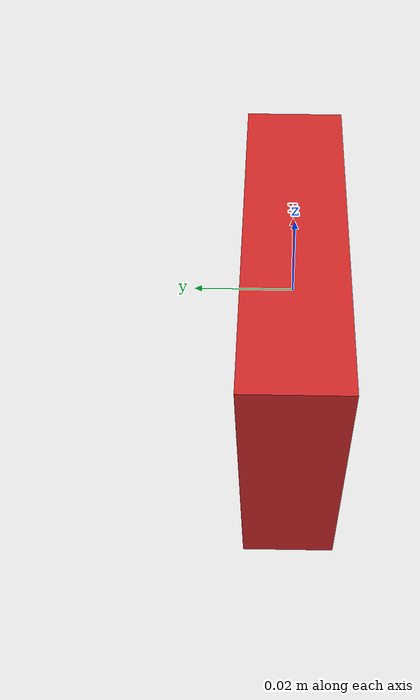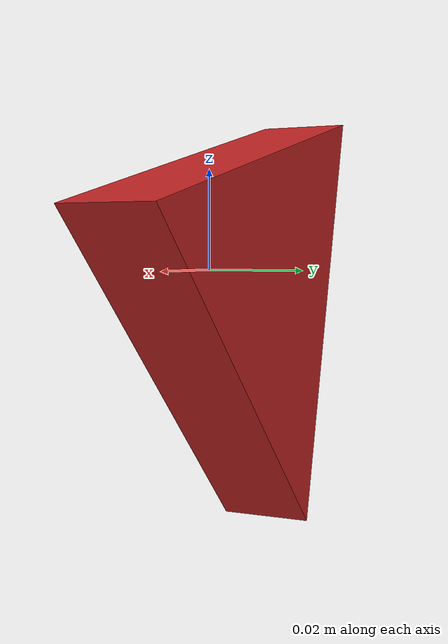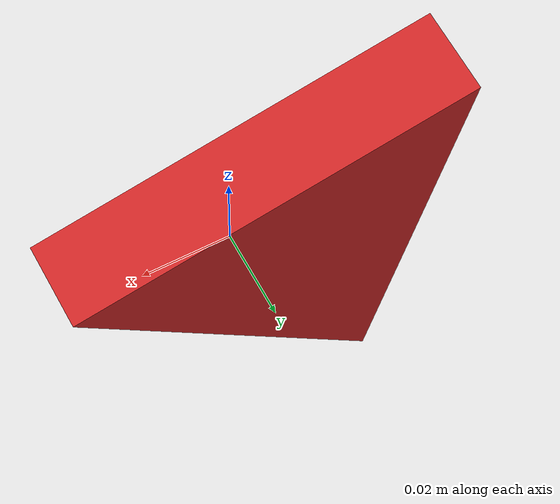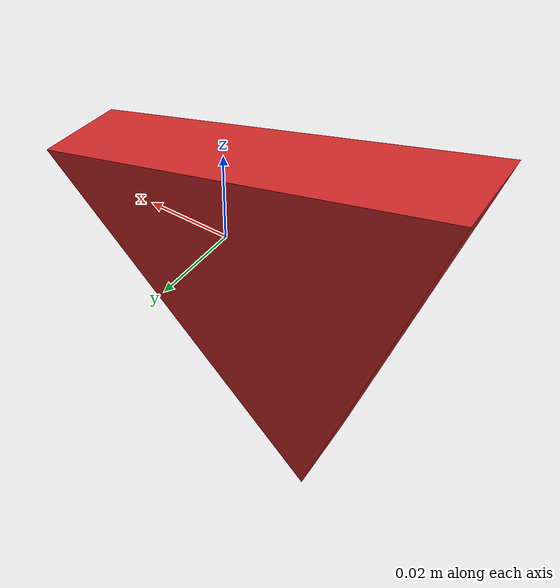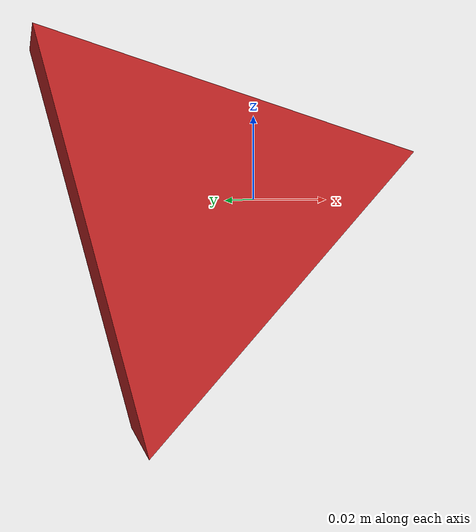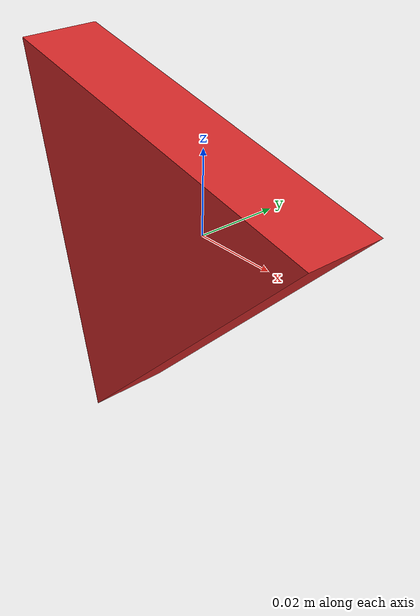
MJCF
<mujoco model="triangle">
  <default>
    <default class="visual">
      <geom group="2" type="mesh" contype="0" conaffinity="0"/>
    </default>
    <default class="collision">
      <geom group="3" type="mesh"/>
    </default>
  </default>
  <asset>
    <texture type="2d" name="texture" file="texture.png"/>
    <material name="Red.003" texture="texture" specular="0.0" shininess="0.25"/>
    <mesh file="triangle.obj"/>
  </asset>
  <worldbody>
    <body name="triangle">
      <freejoint/>
      <geom material="Red.003" mesh="triangle" class="visual"/>
      <geom mesh="triangle" class="collision"/>
    </body>
  </worldbody>
</mujoco>
